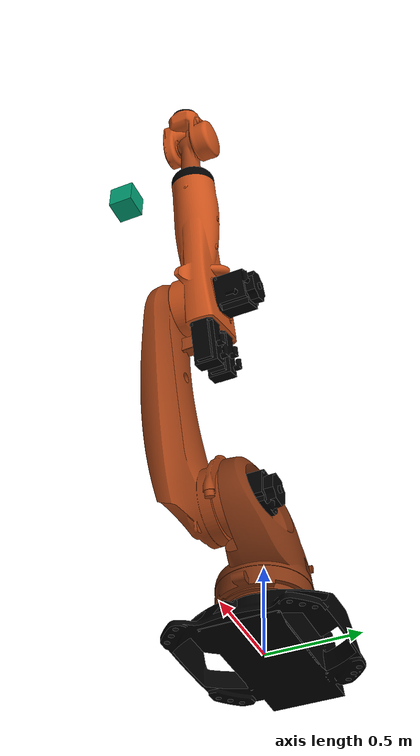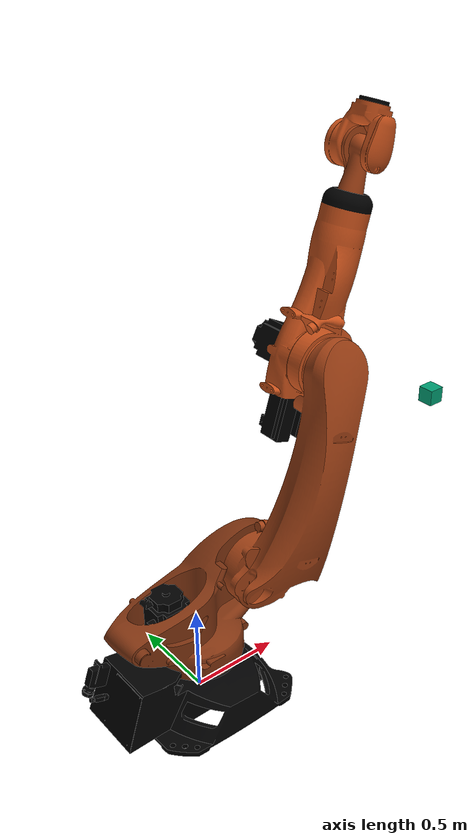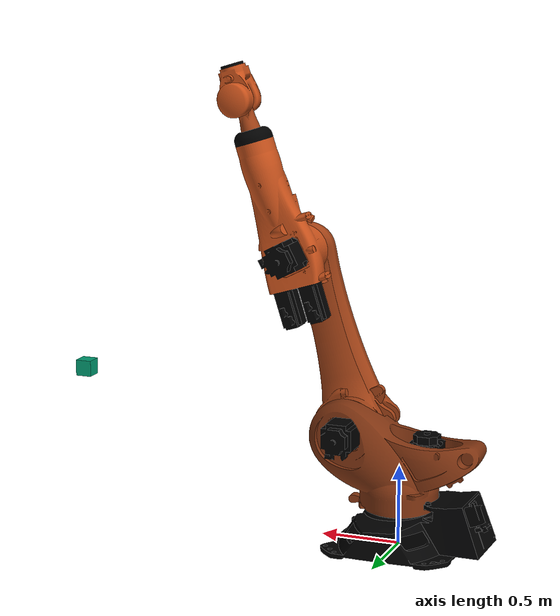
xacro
<?xml version="1.0"?>

<robot name="kuka_kr120r2500pro" xmlns:xacro="http://wiki.ros.org/xacro">
    <xacro:include filename="$(find practice)/urdf/kr120r2500pro_macro.xacro" />
    <xacro:kuka_kr120r2500pro prefix=""/>

    <link name="world"/>

    <joint name="world__base_link" type="fixed">
        <parent link="world"/>
        <child link="base_link"/>
        <origin xyz="0 0 0" rpy="0 0 0"/>
    </joint>

    <link name="box">
        <visual>
            <geometry>
                <box size="0.1 0.1 0.1"/>
            </geometry>
        </visual>
        <collision>
            <geometry>
                <box size="0.1 0.1 0.1"/>
            </geometry>
        </collision>
    </link>

    <joint name="world__box" type="fixed">
        <parent link="world"/>
        <child link="box"/>
        <origin xyz="2 0.25 1" rpy="0 0 0"/>
    </joint>

</robot>

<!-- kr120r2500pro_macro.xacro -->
<robot xmlns:xacro="http://wiki.ros.org/xacro">

  <xacro:property name="DEG2RAD" value="0.017453292519943295"/>

  <xacro:macro name="kuka_kr120r2500pro" params="prefix">
    <!-- LINKS -->
    <!-- base link -->
    <link name="${prefix}base_link">
      <inertial>
        <origin xyz="0 0 0" rpy="0 0 0"/>
        <mass value="2"/>
        <inertia ixx="0.01" ixy="0" ixz="0" iyy="0.01" iyz="0" izz="0.01" />
      </inertial>
      <visual>
        <origin xyz="0 0 0" rpy="0 0 0"/>
        <geometry>
          <mesh filename="package://kuka_kr120_support/meshes/kr120r2500pro/visual/base_link.dae" />
        </geometry>
      </visual>
      <collision>
        <origin xyz="0 0 0" rpy="0 0 0"/>
        <geometry>
          <mesh filename="package://kuka_kr120_support/meshes/kr120r2500pro/collision/base_link.stl" />
        </geometry>
      </collision>
    </link>
    <!-- link 1 (A1) -->
    <link name="${prefix}link_1">
      <inertial>
        <origin xyz="0 0 0" rpy="0 0 0"/>
        <mass value="2"/>
        <inertia ixx="0.01" ixy="0" ixz="0" iyy="0.01" iyz="0" izz="0.01" />
      </inertial>
      <visual>
        <origin xyz="0 0 0" rpy="0 0 0"/>
        <geometry>
          <mesh filename="package://kuka_kr120_support/meshes/kr120r2500pro/visual/link_1.dae" />
        </geometry>
      </visual>
      <collision>
        <origin xyz="0 0 0" rpy="0 0 0"/>
        <geometry>
          <mesh filename="package://kuka_kr120_support/meshes/kr120r2500pro/collision/link_1.stl" />
        </geometry>
      </collision>
    </link>
    <!-- link 2 -->
    <link name="${prefix}link_2">
      <inertial>
        <origin xyz="0 0 0" rpy="0 0 0"/>
        <mass value="2"/>
        <inertia ixx="0.01" ixy="0" ixz="0" iyy="0.01" iyz="0" izz="0.01" />
      </inertial>
      <visual>
        <origin xyz="0 0 0" rpy="0 0 0"/>
        <geometry>
          <mesh filename="package://kuka_kr120_support/meshes/kr120r2500pro/visual/link_2.dae"/>
        </geometry>
      </visual>
      <collision>
        <origin xyz="0 0 0" rpy="0 0 0"/>
        <geometry>
          <mesh filename="package://kuka_kr120_support/meshes/kr120r2500pro/collision/link_2.stl" />
        </geometry>
      </collision>
    </link>
    <!-- link 3 -->
    <link name="${prefix}link_3">
      <inertial>
        <origin xyz="0 0 0" rpy="0 0 0"/>
        <mass value="2"/>
        <inertia ixx="0.01" ixy="0" ixz="0" iyy="0.01" iyz="0" izz="0.01" />
      </inertial>
      <visual>
        <origin xyz="0 0 0" rpy="0 0 0"/>
        <geometry>
          <mesh filename="package://kuka_kr120_support/meshes/kr120r2500pro/visual/link_3.dae" />
        </geometry>
      </visual>
      <collision>
        <origin xyz="0 0 0" rpy="0 0 0"/>
        <geometry>
          <mesh filename="package://kuka_kr120_support/meshes/kr120r2500pro/collision/link_3.stl" />
        </geometry>
      </collision>
    </link>
    <!-- link 4 -->
    <link name="${prefix}link_4">
      <inertial>
        <origin xyz="0 0 0" rpy="0 0 0"/>
        <mass value="2"/>
        <inertia ixx="0.01" ixy="0" ixz="0" iyy="0.01" iyz="0" izz="0.01" />
      </inertial>
      <visual>
        <origin xyz="0 0 0" rpy="0 0 0"/>
        <geometry>
          <mesh filename="package://kuka_kr120_support/meshes/kr120r2500pro/visual/link_4.dae" />
        </geometry>
      </visual>
      <collision>
        <origin xyz="0 0 0" rpy="0 0 0"/>
        <geometry>
          <mesh filename="package://kuka_kr120_support/meshes/kr120r2500pro/collision/link_4.stl" />
        </geometry>
      </collision>
    </link>
    <!-- link 5 -->
    <link name="${prefix}link_5">
      <inertial>
        <origin xyz="0 0 0" rpy="0 0 0"/>
        <mass value="2"/>
        <inertia ixx="0.01" ixy="0" ixz="0" iyy="0.01" iyz="0" izz="0.01" />
      </inertial>
      <visual>
        <origin xyz="0 0 0" rpy="0 0 0"/>
        <geometry>
          <mesh filename="package://kuka_kr120_support/meshes/kr120r2500pro/visual/link_5.dae" />
        </geometry>
      </visual>
      <collision>
        <origin xyz="0 0 0" rpy="0 0 0"/>
        <geometry>
          <mesh filename="package://kuka_kr120_support/meshes/kr120r2500pro/collision/link_5.stl" />
        </geometry>
      </collision>
    </link>
    <!-- link 6 -->
    <link name="${prefix}link_6">
      <inertial>
        <origin xyz="0 0 0" rpy="0 0 0"/>
        <mass value="2"/>
        <inertia ixx="0.01" ixy="0" ixz="0" iyy="0.01" iyz="0" izz="0.01" />
      </inertial>
      <visual>
        <origin xyz="0 0 0" rpy="0 0 0"/>
        <geometry>
          <mesh filename="package://kuka_kr120_support/meshes/kr120r2500pro/visual/link_6.dae" />
        </geometry>
      </visual>
      <collision>
        <origin xyz="0 0 0" rpy="0 0 0"/>
        <geometry>
          <mesh filename="package://kuka_kr120_support/meshes/kr120r2500pro/collision/link_6.stl" />
        </geometry>
      </collision>
    </link>
    <!-- tool 0 -->
    <!-- This frame corresponds to the $FLANGE coordinate system in KUKA KRC controllers. -->
    <link name="${prefix}tool0"/>
    <!-- END LINKS -->

    <!-- JOINTS -->
    <!-- joint 1 (A1) -->
    <joint name="${prefix}joint_a1" type="revolute">
      <origin xyz="0 0 0.675" rpy="0 0 0"/>
      <parent link="${prefix}base_link"/>
      <child link="${prefix}link_1"/>
      <axis xyz="0 0 -1"/>
      <limit effort="0" lower="${-DEG2RAD * 185}" upper="${DEG2RAD * 185}" velocity="${DEG2RAD * 156}"/>
    </joint>
    <!-- joint 2 (A2) -->
    <joint name="${prefix}joint_a2" type="revolute">
      <origin xyz="0.35 0 0" rpy="0 0 0"/>
      <parent link="${prefix}link_1"/>
      <child link="${prefix}link_2"/>
      <axis xyz="0 1 0"/>
      <limit effort="0" lower="${-DEG2RAD * 140}" upper="-${DEG2RAD * 5}" velocity="${DEG2RAD * 156}"/>
    </joint>
    <!-- joint 3 (A3) -->
    <joint name="${prefix}joint_a3" type="revolute">
      <origin xyz="1.150 0 0" rpy="0 0 0"/>
      <parent link="${prefix}link_2"/>
      <child link="${prefix}link_3"/>
      <axis xyz="0 1 0"/>
      <limit effort="0" lower="${-DEG2RAD * 120}" upper="${DEG2RAD * 155}" velocity="${DEG2RAD * 156}"/>
    </joint>
    <!-- joint 4 (A4) -->
    <joint name="${prefix}joint_a4" type="revolute">
      <origin xyz="1.0 0 -0.041" rpy="0 0 0"/>
      <parent link="${prefix}link_3"/>
      <child link="${prefix}link_4"/>
      <axis xyz="-1 0 0"/>
      <limit effort="0" lower="${-DEG2RAD * 350}" upper="${DEG2RAD * 350}" velocity="${DEG2RAD * 330}"/>
    </joint>
    <!-- joint 5 (A5) -->
    <joint name="${prefix}joint_a5" type="revolute">
      <origin xyz="0 0 0" rpy="0 0 0"/>
      <parent link="${prefix}link_4"/>
      <child link="${prefix}link_5"/>
      <axis xyz="0 1 0"/>
      <limit effort="0" lower="${-DEG2RAD * 122.5}" upper="${DEG2RAD * 122.5}" velocity="${DEG2RAD * 330}"/>
    </joint>
    <!-- joint 6 (A6) -->
    <joint name="${prefix}joint_a6" type="revolute">
      <origin xyz="0 0 0" rpy="0 0 0"/>
      <parent link="${prefix}link_5"/>
      <child link="${prefix}link_6"/>
      <axis xyz="-1 0 0"/>
      <limit effort="0" lower="${-DEG2RAD * 350}" upper="${DEG2RAD * 350}" velocity="${DEG2RAD * 615}"/>
    </joint>
    <!-- tool frame - fixed frame -->
    <joint name="${prefix}joint_a6-tool0" type="fixed">
      <parent link="${prefix}link_6"/>
      <child link="${prefix}tool0"/>
      <origin xyz="0.215 0 0" rpy="0 ${DEG2RAD * 90} 0"/>
    </joint>
    <!-- END JOINTS -->

    <!-- ROS base_link to KUKA $ROBROOT coordinate system transform -->
    <link name="${prefix}base" />
    <joint name="${prefix}base_link-base" type="fixed">
      <origin xyz="0 0 0" rpy="0 0 0"/>
      <parent link="${prefix}base_link"/>
      <child link="${prefix}base"/>
    </joint>

  </xacro:macro>
</robot>
